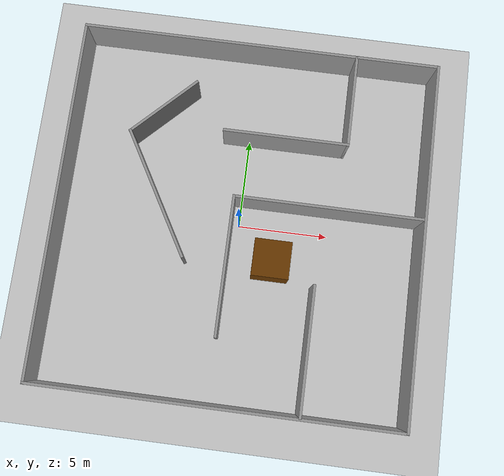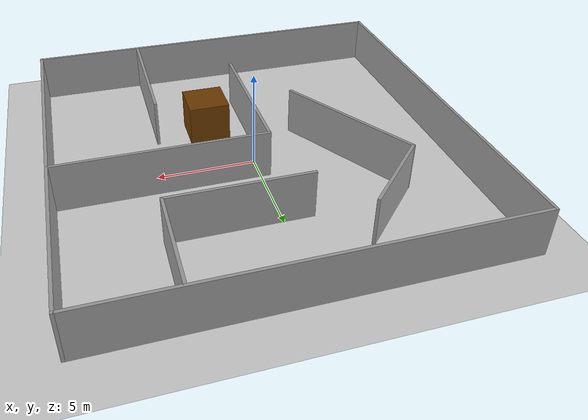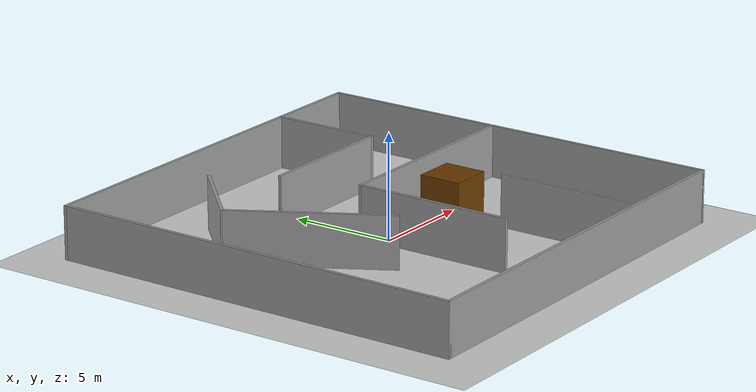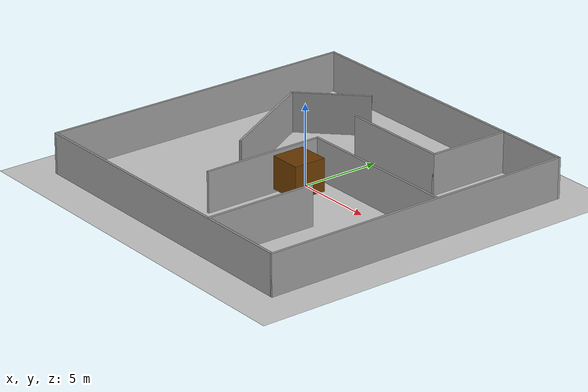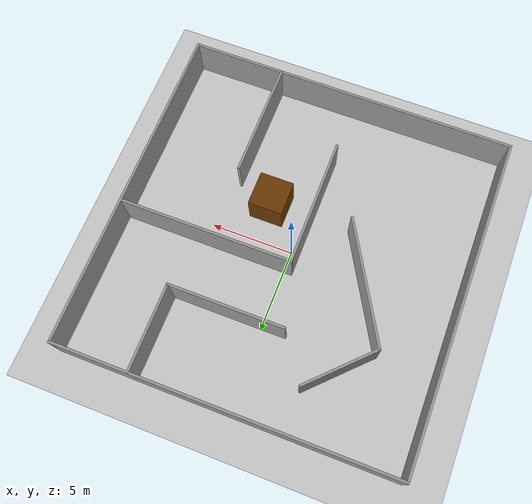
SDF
<?xml version="1.0" ?>
<sdf version="1.5">
    <world name="default">
        <physics type="ode">
        <max_step_size>0.001</max_step_size>
        <real_time_factor>1</real_time_factor>
        <real_time_update_rate>1000</real_time_update_rate>
        <gravity>0 0 -9.81</gravity>
            <ode>
                <solver>
                <type>quick</type>
                <iters>50</iters>
                <sor>1.3</sor>
                </solver>
                <constraints>
                <cfm>0.0</cfm>
                <erp>0.2</erp>
                <contact_max_correcting_vel>10.0</contact_max_correcting_vel>
                <contact_surface_layer>0.001</contact_surface_layer>
                </constraints>
            </ode>
        </physics>

        <scene>
        <sky>
            <clouds>
                <speed>12</speed>
            </clouds>
        </sky>
        </scene>
        <!-- A global light source -->
        <include>
            <uri>model://sun</uri>
        </include>
        <!-- A ground plane -->
        <include>
            <uri>model://ground_plane</uri>
        </include>
        <!-- environment blocks, obstacles or stairs -->

        <include>
            <uri>model://Maze</uri>
        </include>

        <model name="load_block">
            <static>false</static>
            <pose>2 -2 1 0 0 0</pose>
            <link name="load">
                <pose>0 0 1 0 0 0</pose>
                <collision name="load_box_collision">
                    <geometry>
                        <box>
                            <size>2 2 2</size>
                        </box>
                    </geometry>
                </collision>
                <visual name="load_box_visual">
                    <geometry>
                        <box>
                            <size>2 2 2</size>
                        </box>
                    </geometry>
                    <material>
                        <ambient>0.2 0.2 0.2 1.0</ambient>
                        <diffuse>.421 0.225 0.0 1.0</diffuse>
                    </material>
                    <plugin name="drawrope" filename="libcodogsDrawRopLine.so">
                        <pc0>-1 0 0</pc0>
                        <pc1>0 1 0</pc1>
                        <pc2>0 -1 0</pc2>
                    </plugin>
                </visual>
                <inertial>
                    <mass value="30000000000"/>
                 </inertial>
            </link>
            <gazebo reference="load">
                <material>Gazebo/Gray</material>
            </gazebo>
            <plugin name="load_dynamic" filename="libloadDynamicPlugin.so"/>
        </model>

    </world>
</sdf>

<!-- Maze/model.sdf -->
<sdf version='1.6'>
  <model name='Maze'>
    <pose frame=''>0 0 0 0 -0 0</pose>
    <link name='Wall_0'>
      <collision name='Wall_0_Collision'>
        <geometry>
          <box>
            <size>20.15 0.15 2.5</size>
          </box>
        </geometry>
        <pose frame=''>0 0 1.25 0 -0 0</pose>
      </collision>
      <visual name='Wall_0_Visual'>
        <pose frame=''>0 0 1.25 0 -0 0</pose>
        <geometry>
          <box>
            <size>20.15 0.15 2.5</size>
          </box>
        </geometry>
        <material>
          <script>
            <uri>file://media/materials/scripts/gazebo.material</uri>
            <name>Gazebo/Grey</name>
          </script>
          <ambient>1 1 1 1</ambient>
        </material>
        <meta>
          <layer>0</layer>
        </meta>
      </visual>
      <pose frame=''>0 -10 0 0 -0 0</pose>
    </link>
    <link name='Wall_10'>
      <collision name='Wall_10_Collision'>
        <geometry>
          <box>
            <size>7 0.15 2.5</size>
          </box>
        </geometry>
        <pose frame=''>0 0 1.25 0 -0 0</pose>
      </collision>
      <visual name='Wall_10_Visual'>
        <pose frame=''>0 0 1.25 0 -0 0</pose>
        <geometry>
          <box>
            <size>7 0.15 2.5</size>
          </box>
        </geometry>
        <material>
          <script>
            <uri>file://media/materials/scripts/gazebo.material</uri>
            <name>Gazebo/Grey</name>
          </script>
          <ambient>1 1 1 1</ambient>
        </material>
        <meta>
          <layer>0</layer>
        </meta>
      </visual>
      <pose frame=''>4.44071 -6.49902 0 0 -0 1.5708</pose>
    </link>
    <link name='Wall_12'>
      <collision name='Wall_12_Collision'>
        <geometry>
          <box>
            <size>10.5 0.15 2.5</size>
          </box>
        </geometry>
        <pose frame=''>0 0 1.25 0 -0 0</pose>
      </collision>
      <visual name='Wall_12_Visual'>
        <pose frame=''>0 0 1.25 0 -0 0</pose>
        <geometry>
          <box>
            <size>10.5 0.15 2.5</size>
          </box>
        </geometry>
        <material>
          <script>
            <uri>file://media/materials/scripts/gazebo.material</uri>
            <name>Gazebo/Grey</name>
          </script>
          <ambient>1 1 1 1</ambient>
        </material>
        <meta>
          <layer>0</layer>
        </meta>
      </visual>
      <pose frame=''>4.74852 1.21705 0 0 -0 3.14159</pose>
    </link>
    <link name='Wall_13'>
      <collision name='Wall_13_Collision'>
        <geometry>
          <box>
            <size>7.75 0.15 2.5</size>
          </box>
        </geometry>
        <pose frame=''>0 0 1.25 0 -0 0</pose>
      </collision>
      <visual name='Wall_13_Visual'>
        <pose frame=''>0 0 1.25 0 -0 0</pose>
        <geometry>
          <box>
            <size>7.75 0.15 2.5</size>
          </box>
        </geometry>
        <material>
          <script>
            <uri>file://media/materials/scripts/gazebo.material</uri>
            <name>Gazebo/Grey</name>
          </script>
          <ambient>1 1 1 1</ambient>
        </material>
        <meta>
          <layer>0</layer>
        </meta>
      </visual>
      <pose frame=''>-0.426476 -2.58295 0 0 -0 -1.5708</pose>
    </link>
    <link name='Wall_15'>
      <collision name='Wall_15_Collision'>
        <geometry>
          <box>
            <size>7.75 0.15 2.5</size>
          </box>
        </geometry>
        <pose frame=''>0 0 1.25 0 -0 0</pose>
      </collision>
      <visual name='Wall_15_Visual'>
        <pose frame=''>0 0 1.25 0 -0 0</pose>
        <geometry>
          <box>
            <size>7.75 0.15 2.5</size>
          </box>
        </geometry>
        <material>
          <script>
            <uri>file://media/materials/scripts/gazebo.material</uri>
            <name>Gazebo/Grey</name>
          </script>
          <ambient>1 1 1 1</ambient>
        </material>
        <meta>
          <layer>0</layer>
        </meta>
      </visual>
      <pose frame=''>-4.66877 0.864939 0 0 -0 -1.0472</pose>
    </link>
    <link name='Wall_17'>
      <collision name='Wall_17_Collision'>
        <geometry>
          <box>
            <size>4.75 0.15 2.5</size>
          </box>
        </geometry>
        <pose frame=''>0 0 1.25 0 -0 0</pose>
      </collision>
      <visual name='Wall_17_Visual'>
        <pose frame=''>0 0 1.25 0 -0 0</pose>
        <geometry>
          <box>
            <size>4.75 0.15 2.5</size>
          </box>
        </geometry>
        <material>
          <script>
            <uri>file://media/materials/scripts/gazebo.material</uri>
            <name>Gazebo/Grey</name>
          </script>
          <ambient>1 1 1 1</ambient>
        </material>
        <meta>
          <layer>0</layer>
        </meta>
      </visual>
      <pose frame=''>-4.94243 5.78218 0 0 -0 0.785398</pose>
    </link>
    <link name='Wall_2'>
      <collision name='Wall_2_Collision'>
        <geometry>
          <box>
            <size>20.15 0.15 2.5</size>
          </box>
        </geometry>
        <pose frame=''>0 0 1.25 0 -0 0</pose>
      </collision>
      <visual name='Wall_2_Visual'>
        <pose frame=''>0 0 1.25 0 -0 0</pose>
        <geometry>
          <box>
            <size>20.15 0.15 2.5</size>
          </box>
        </geometry>
        <material>
          <script>
            <uri>file://media/materials/scripts/gazebo.material</uri>
            <name>Gazebo/Grey</name>
          </script>
          <ambient>1 1 1 1</ambient>
        </material>
        <meta>
          <layer>0</layer>
        </meta>
      </visual>
      <pose frame=''>10 0 0 0 -0 1.5708</pose>
    </link>
    <link name='Wall_20'>
      <collision name='Wall_20_Collision'>
        <geometry>
          <box>
            <size>7 0.15 2.5</size>
          </box>
        </geometry>
        <pose frame=''>0 0 1.25 0 -0 0</pose>
      </collision>
      <visual name='Wall_20_Visual'>
        <pose frame=''>0 0 1.25 0 -0 0</pose>
        <geometry>
          <box>
            <size>7 0.15 2.5</size>
          </box>
        </geometry>
        <material>
          <script>
            <uri>file://media/materials/scripts/gazebo.material</uri>
            <name>Gazebo/Grey</name>
          </script>
          <ambient>1 1 1 1</ambient>
        </material>
        <meta>
          <layer>0</layer>
        </meta>
      </visual>
      <pose frame=''>1.98814 4.85764 0 0 -0 0</pose>
    </link>
    <link name='Wall_21'>
      <collision name='Wall_21_Collision'>
        <geometry>
          <box>
            <size>5.25 0.15 2.5</size>
          </box>
        </geometry>
        <pose frame=''>0 0 1.25 0 -0 0</pose>
      </collision>
      <visual name='Wall_21_Visual'>
        <pose frame=''>0 0 1.25 0 -0 0</pose>
        <geometry>
          <box>
            <size>5.25 0.15 2.5</size>
          </box>
        </geometry>
        <material>
          <script>
            <uri>file://media/materials/scripts/gazebo.material</uri>
            <name>Gazebo/Grey</name>
          </script>
          <ambient>1 1 1 1</ambient>
        </material>
        <meta>
          <layer>0</layer>
        </meta>
      </visual>
      <pose frame=''>5.41314 7.40764 0 0 -0 1.5708</pose>
    </link>
    <link name='Wall_6'>
      <collision name='Wall_6_Collision'>
        <geometry>
          <box>
            <size>20.15 0.15 2.5</size>
          </box>
        </geometry>
        <pose frame=''>0 0 1.25 0 -0 0</pose>
      </collision>
      <visual name='Wall_6_Visual'>
        <pose frame=''>0 0 1.25 0 -0 0</pose>
        <geometry>
          <box>
            <size>20.15 0.15 2.5</size>
          </box>
        </geometry>
        <material>
          <script>
            <uri>file://media/materials/scripts/gazebo.material</uri>
            <name>Gazebo/Grey</name>
          </script>
          <ambient>1 1 1 1</ambient>
        </material>
        <meta>
          <layer>0</layer>
        </meta>
      </visual>
      <pose frame=''>0 10 0 0 -0 3.14159</pose>
    </link>
    <link name='Wall_7'>
      <collision name='Wall_7_Collision'>
        <geometry>
          <box>
            <size>20.15 0.15 2.5</size>
          </box>
        </geometry>
        <pose frame=''>0 0 1.25 0 -0 0</pose>
      </collision>
      <visual name='Wall_7_Visual'>
        <pose frame=''>0 0 1.25 0 -0 0</pose>
        <geometry>
          <box>
            <size>20.15 0.15 2.5</size>
          </box>
        </geometry>
        <material>
          <script>
            <uri>file://media/materials/scripts/gazebo.material</uri>
            <name>Gazebo/Grey</name>
          </script>
          <ambient>1 1 1 1</ambient>
        </material>
        <meta>
          <layer>0</layer>
        </meta>
      </visual>
      <pose frame=''>-10 0 0 0 -0 -1.5708</pose>
    </link>
    <static>1</static>
  </model>
</sdf>
